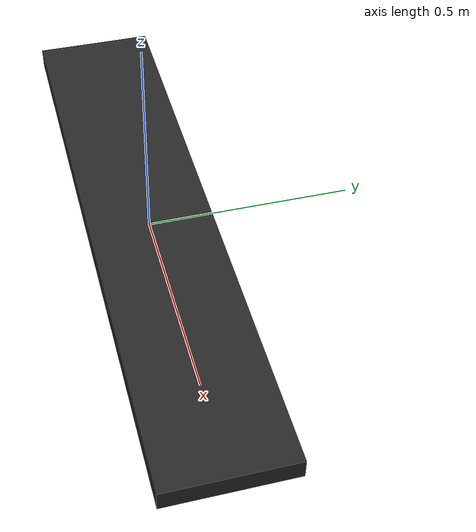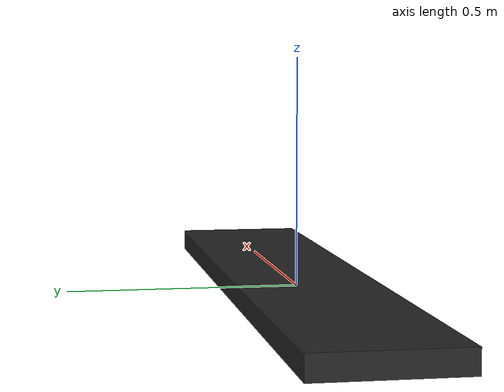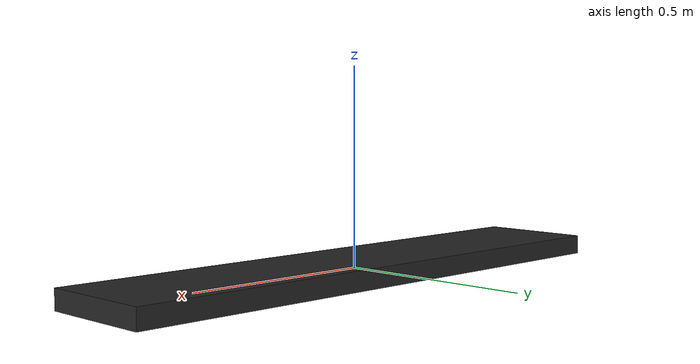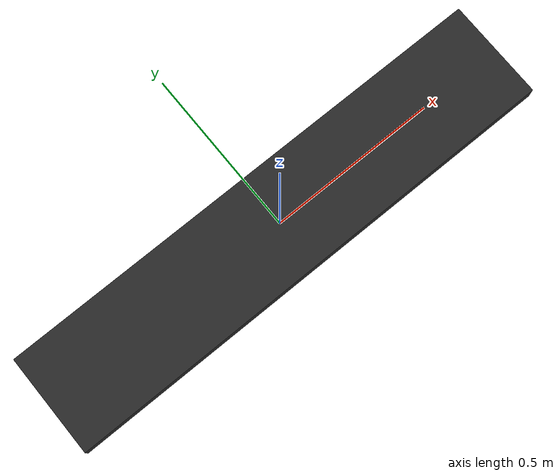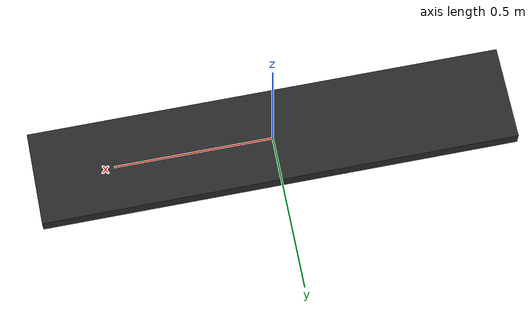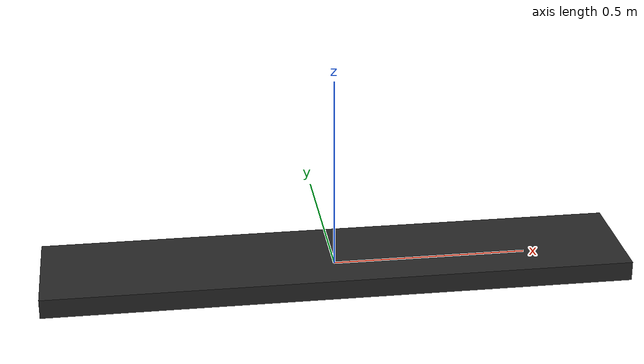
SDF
<?xml version="1.0"?>
<sdf version="1.7">
  <model name="conveyor_belt">
    <static>true</static>

    <link name="belt_link">
      <pose>0 0 0 0 0 0</pose>
      <inertial>
        <mass>10.0</mass>
        <inertia>
          <ixx>0.1</ixx>
          <ixy>0</ixy>
          <ixz>0</ixz>
          <iyy>0.5</iyy>
          <iyz>0</iyz>
          <izz>0.5</izz>
        </inertia>
      </inertial>

      <!-- Main Belt Surface Collision -->
      <collision name="belt_collision">
        <pose>0 0 0 0 0 0</pose>
        <geometry>
          <box>
            <size>1.5 0.3 0.05</size>
          </box>
        </geometry>
        <surface>
          <friction>
            <ode>
              <mu>0.7</mu>
              <mu2>150</mu2>
              <fdir1>1 0 0</fdir1>  <!-- Friction direction along X (belt direction) -->
            </ode>
          </friction>
        </surface>
      </collision>

      <!-- Visual: Belt Surface -->
      <visual name="belt_visual">
        <pose>0 0 0 0 0 0</pose>
        <geometry>
          <box>
            <size>1.5 0.3 0.05</size>
          </box>
        </geometry>
        <material>
          <ambient>0.1 0.1 0.1 1</ambient>
          <diffuse>0.15 0.15 0.15 1</diffuse>
          <specular>0.3 0.3 0.3 1</specular>
        </material>
      </visual>
    </link>

    <!-- TrackController Plugin (Gazebo built-in) -->
    <plugin filename="gz-sim-track-controller-system"
      name="gz::sim::systems::TrackController">
      <link>belt_link</link>
      <odometry_publish_frequency>10</odometry_publish_frequency>
    </plugin>

  </model>
</sdf>
